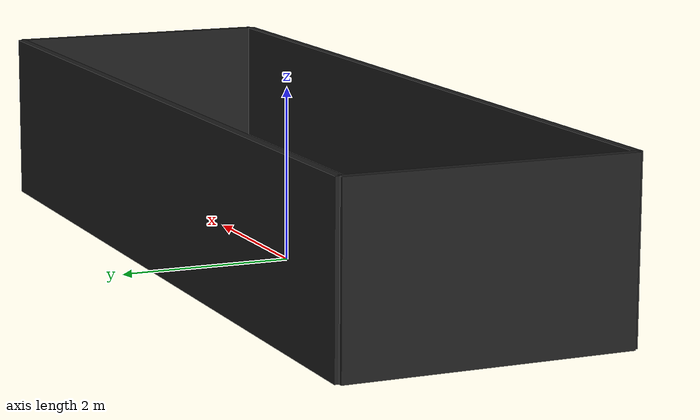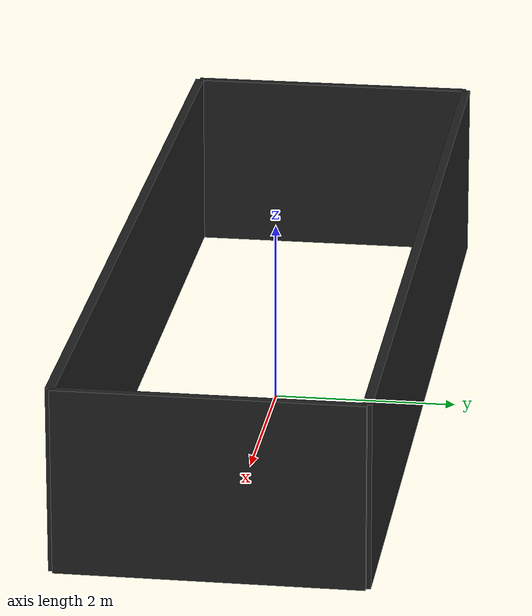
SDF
<sdf version='1.5'>
    <!-- Draw Circle -->
    <model name='ros_symbol'>
      <static>1</static>
      <link name='symbol'>
        <!-- Define Rectangular Region with Four Box Walls -->

        <!-- Wall 1: Along the longer side (20 meters) -->
        <collision name='wall1'>
          <pose>0 1.6 1 0 0 1.5708</pose>  <!-- Positioned at y = 10 meters -->
          <geometry>
            <box>
              <size>0.1 10 2</size>  <!-- Length = 20 meters, height = 2 meters -->
            </box>
          </geometry>
        </collision>
        <visual name='wall1_visual'>
          <pose>0 1.6 1 0 0 1.5708</pose>
          <geometry>
            <box>
              <size>0.1 10 2</size>
            </box>
          </geometry>
          <material>
            <script>
              <uri>file://media/materials/scripts/gazebo.material</uri>
              <name>Gazebo/FlatBlack</name>
            </script>
          </material>
        </visual>

        <!-- Wall 2: Along the other longer side (20 meters) -->
        <collision name='wall2'>
          <pose>0 -1.6 1 0 0 1.5708</pose>  <!-- Positioned at y = -10 meters -->
          <geometry>
            <box>
              <size>0.1 10 2</size>  <!-- Length = 20 meters, height = 2 meters -->
            </box>
          </geometry>
        </collision>
        <visual name='wall2_visual'>
          <pose>0 -1.6 1 0 0 1.5708</pose>
          <geometry>
            <box>
              <size>0.1 10 2</size>
            </box>
          </geometry>
          <material>
            <script>
              <uri>file://media/materials/scripts/gazebo.material</uri>
              <name>Gazebo/FlatBlack</name>
            </script>
          </material>
        </visual>

        <!-- Wall 3: Along the shorter side (6 meters) -->
        <collision name='wall3'>
          <pose>5 0 1 0 0 0</pose>  <!-- Positioned at x = 3 meters, rotated 90 degrees -->
          <geometry>
            <box>
              <size>0.1 3.2 2</size>  <!-- Width = 6 meters, height = 2 meters -->
            </box>
          </geometry>
        </collision>
        <visual name='wall3_visual'>
          <pose>5 0 1 0 0 0</pose>
          <geometry>
            <box>
              <size>0.1 3.2 2</size>
            </box>
          </geometry>
          <material>
            <script>
              <uri>file://media/materials/scripts/gazebo.material</uri>
              <name>Gazebo/FlatBlack</name>
            </script>
          </material>
        </visual>

        <!-- Wall 4: Along the other shorter side (6 meters) -->
        <collision name='wall4'>
          <pose>-5 0 1 0 0 0</pose>  <!-- Positioned at x = -3 meters, rotated 90 degrees -->
          <geometry>
            <box>
              <size>0.1 3.2 2</size>  <!-- Width = 6 meters, height = 2 meters -->
            </box>
          </geometry>
        </collision>
        <visual name='wall4_visual'>
          <pose>-5 0 1 0 0 0</pose>
          <geometry>
            <box>
              <size>0.1 3.2 2</size>
            </box>
          </geometry>
          <material>
            <script>
              <uri>file://media/materials/scripts/gazebo.material</uri>
              <name>Gazebo/FlatBlack</name>
            </script>
          </material>
        </visual>

      </link>
    </model>
</sdf>
